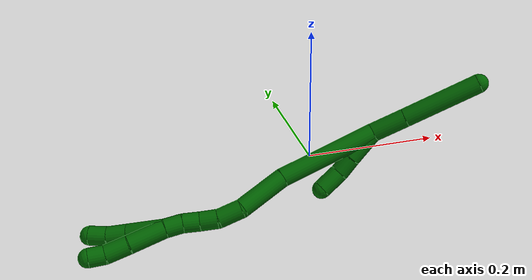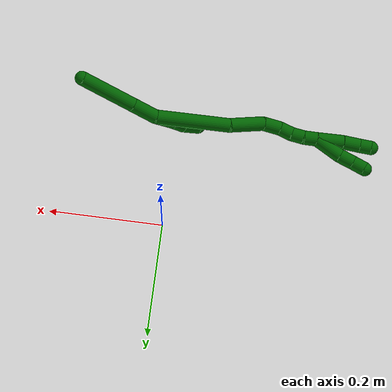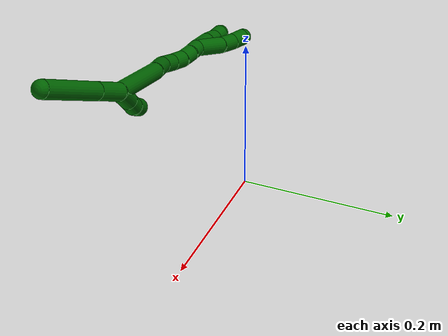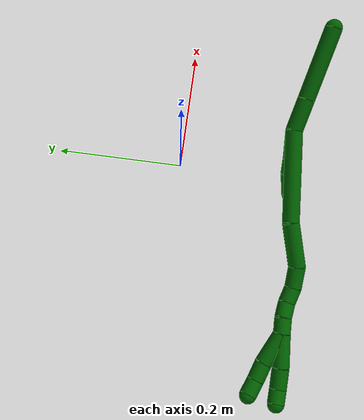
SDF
<sdf version="1.7">
 <world name="default">
  <model name="6">
   <static>0</static>
   <link name="6">
    <collision name="collision-cylinder-e_1_2_8">
     <pose>0.003871 -0.003977 -0.022733 2.96841 0.166192 1.52941</pose>
     <geometry><cylinder><radius>0.0125</radius><length>0.046802</length></cylinder></geometry>
     <surface>
      <friction><ode><mu>1.16</mu><mu2>1.16</mu2><slip1>0</slip1><slip2>0</slip2></ode></friction>
      <contact><ode><kp>1e+06</kp><kd>1</kd><max_vel>0</max_vel><min_depth>0.001</min_depth></ode></contact>
     </surface>
    </collision>
    <visual name="visual-cylinder-e_1_2_8">
     <pose>0.003871 -0.003977 -0.022733 2.96841 0.166192 1.52941</pose>
     <geometry><cylinder><radius>0.0125</radius><length>0.046802</length></cylinder></geometry>
     <material><ambient>0 0.392157 0.003922 1</ambient></material>
    </visual>
    <collision name="collision-cylinder-e_2_8_6">
     <pose>0.016519 -0.016551 -0.095582 2.97169 0.170929 1.57683</pose>
     <geometry><cylinder><radius>0.0125</radius><length>0.103198</length></cylinder></geometry>
     <surface>
      <friction><ode><mu>1.16</mu><mu2>1.16</mu2><slip1>0</slip1><slip2>0</slip2></ode></friction>
      <contact><ode><kp>1e+06</kp><kd>1</kd><max_vel>0</max_vel><min_depth>0.001</min_depth></ode></contact>
     </surface>
    </collision>
    <visual name="visual-cylinder-e_2_8_6">
     <pose>0.016519 -0.016551 -0.095582 2.97169 0.170929 1.57683</pose>
     <geometry><cylinder><radius>0.0125</radius><length>0.103198</length></cylinder></geometry>
     <material><ambient>0 0.392157 0.003922 1</ambient></material>
    </visual>
    <collision name="collision-cylinder-e_1_2_9">
     <pose>-0.009663 -0.003373 0.019045 0.17527 -0.463341 -0.041447</pose>
     <geometry><cylinder><radius>0.0125</radius><length>0.043241</length></cylinder></geometry>
     <surface>
      <friction><ode><mu>1.16</mu><mu2>1.16</mu2><slip1>0</slip1><slip2>0</slip2></ode></friction>
      <contact><ode><kp>1e+06</kp><kd>1</kd><max_vel>0</max_vel><min_depth>0.001</min_depth></ode></contact>
     </surface>
    </collision>
    <visual name="visual-cylinder-e_1_2_9">
     <pose>-0.009663 -0.003373 0.019045 0.17527 -0.463341 -0.041447</pose>
     <geometry><cylinder><radius>0.0125</radius><length>0.043241</length></cylinder></geometry>
     <material><ambient>0 0.392157 0.003922 1</ambient></material>
    </visual>
    <collision name="collision-cylinder-e_2_9_10">
     <pose>-0.025639 -0.008251 0.048767 0.140118 -0.529684 -0.03806</pose>
     <geometry><cylinder><radius>0.0125</radius><length>0.02499</length></cylinder></geometry>
     <surface>
      <friction><ode><mu>1.16</mu><mu2>1.16</mu2><slip1>0</slip1><slip2>0</slip2></ode></friction>
      <contact><ode><kp>1e+06</kp><kd>1</kd><max_vel>0</max_vel><min_depth>0.001</min_depth></ode></contact>
     </surface>
    </collision>
    <visual name="visual-cylinder-e_2_9_10">
     <pose>-0.025639 -0.008251 0.048767 0.140118 -0.529684 -0.03806</pose>
     <geometry><cylinder><radius>0.0125</radius><length>0.02499</length></cylinder></geometry>
     <material><ambient>0 0.392157 0.003922 1</ambient></material>
    </visual>
    <collision name="collision-cylinder-e_3_10_5">
     <pose>-0.035897 -0.013585 0.074347 0.251396 -0.250939 -0.031874</pose>
     <geometry><cylinder><radius>0.0125</radius><length>0.031768</length></cylinder></geometry>
     <surface>
      <friction><ode><mu>1.16</mu><mu2>1.16</mu2><slip1>0</slip1><slip2>0</slip2></ode></friction>
      <contact><ode><kp>1e+06</kp><kd>1</kd><max_vel>0</max_vel><min_depth>0.001</min_depth></ode></contact>
     </surface>
    </collision>
    <visual name="visual-cylinder-e_3_10_5">
     <pose>-0.035897 -0.013585 0.074347 0.251396 -0.250939 -0.031874</pose>
     <geometry><cylinder><radius>0.0125</radius><length>0.031768</length></cylinder></geometry>
     <material><ambient>0 0.392157 0.003922 1</ambient></material>
    </visual>
    <collision name="collision-cylinder-e_1_2_11">
     <pose>0.001405 -0.008735 0.06634 0.130919 0.021 0.001377</pose>
     <geometry><cylinder><radius>0.0125</radius><length>0.133856</length></cylinder></geometry>
     <surface>
      <friction><ode><mu>1.16</mu><mu2>1.16</mu2><slip1>0</slip1><slip2>0</slip2></ode></friction>
      <contact><ode><kp>1e+06</kp><kd>1</kd><max_vel>0</max_vel><min_depth>0.001</min_depth></ode></contact>
     </surface>
    </collision>
    <visual name="visual-cylinder-e_1_2_11">
     <pose>0.001405 -0.008735 0.06634 0.130919 0.021 0.001377</pose>
     <geometry><cylinder><radius>0.0125</radius><length>0.133856</length></cylinder></geometry>
     <material><ambient>0 0.392157 0.003922 1</ambient></material>
    </visual>
    <collision name="collision-cylinder-e_2_11_12">
     <pose>0.000849 -0.027849 0.163719 0.322692 -0.059872 -0.009748</pose>
     <geometry><cylinder><radius>0.0125</radius><length>0.065573</length></cylinder></geometry>
     <surface>
      <friction><ode><mu>1.16</mu><mu2>1.16</mu2><slip1>0</slip1><slip2>0</slip2></ode></friction>
      <contact><ode><kp>1e+06</kp><kd>1</kd><max_vel>0</max_vel><min_depth>0.001</min_depth></ode></contact>
     </surface>
    </collision>
    <visual name="visual-cylinder-e_2_11_12">
     <pose>0.000849 -0.027849 0.163719 0.322692 -0.059872 -0.009748</pose>
     <geometry><cylinder><radius>0.0125</radius><length>0.065573</length></cylinder></geometry>
     <material><ambient>0 0.392157 0.003922 1</ambient></material>
    </visual>
    <collision name="collision-cylinder-e_3_12_13">
     <pose>-0.001649 -0.038031 0.210531 -0.012493 -0.033944 0.000212</pose>
     <geometry><cylinder><radius>0.0125</radius><length>0.031567</length></cylinder></geometry>
     <surface>
      <friction><ode><mu>1.16</mu><mu2>1.16</mu2><slip1>0</slip1><slip2>0</slip2></ode></friction>
      <contact><ode><kp>1e+06</kp><kd>1</kd><max_vel>0</max_vel><min_depth>0.001</min_depth></ode></contact>
     </surface>
    </collision>
    <visual name="visual-cylinder-e_3_12_13">
     <pose>-0.001649 -0.038031 0.210531 -0.012493 -0.033944 0.000212</pose>
     <geometry><cylinder><radius>0.0125</radius><length>0.031567</length></cylinder></geometry>
     <material><ambient>0 0.392157 0.003922 1</ambient></material>
    </visual>
    <collision name="collision-cylinder-e_4_13_14">
     <pose>-0.000779 -0.03483 0.237637 -0.259108 0.119275 -0.015558</pose>
     <geometry><cylinder><radius>0.0125</radius><length>0.023615</length></cylinder></geometry>
     <surface>
      <friction><ode><mu>1.16</mu><mu2>1.16</mu2><slip1>0</slip1><slip2>0</slip2></ode></friction>
      <contact><ode><kp>1e+06</kp><kd>1</kd><max_vel>0</max_vel><min_depth>0.001</min_depth></ode></contact>
     </surface>
    </collision>
    <visual name="visual-cylinder-e_4_13_14">
     <pose>-0.000779 -0.03483 0.237637 -0.259108 0.119275 -0.015558</pose>
     <geometry><cylinder><radius>0.0125</radius><length>0.023615</length></cylinder></geometry>
     <material><ambient>0 0.392157 0.003922 1</ambient></material>
    </visual>
    <collision name="collision-cylinder-e_5_14_15">
     <pose>0.003629 -0.03042 0.259727 -0.129947 0.270056 -0.017678</pose>
     <geometry><cylinder><radius>0.0125</radius><length>0.022514</length></cylinder></geometry>
     <surface>
      <friction><ode><mu>1.16</mu><mu2>1.16</mu2><slip1>0</slip1><slip2>0</slip2></ode></friction>
      <contact><ode><kp>1e+06</kp><kd>1</kd><max_vel>0</max_vel><min_depth>0.001</min_depth></ode></contact>
     </surface>
    </collision>
    <visual name="visual-cylinder-e_5_14_15">
     <pose>0.003629 -0.03042 0.259727 -0.129947 0.270056 -0.017678</pose>
     <geometry><cylinder><radius>0.0125</radius><length>0.022514</length></cylinder></geometry>
     <material><ambient>0 0.392157 0.003922 1</ambient></material>
    </visual>
    <collision name="collision-cylinder-e_6_15_1">
     <pose>0.008761 -0.029625 0.281705 0.054351 0.187195 0.005103</pose>
     <geometry><cylinder><radius>0.0125</radius><length>0.022875</length></cylinder></geometry>
     <surface>
      <friction><ode><mu>1.16</mu><mu2>1.16</mu2><slip1>0</slip1><slip2>0</slip2></ode></friction>
      <contact><ode><kp>1e+06</kp><kd>1</kd><max_vel>0</max_vel><min_depth>0.001</min_depth></ode></contact>
     </surface>
    </collision>
    <visual name="visual-cylinder-e_6_15_1">
     <pose>0.008761 -0.029625 0.281705 0.054351 0.187195 0.005103</pose>
     <geometry><cylinder><radius>0.0125</radius><length>0.022875</length></cylinder></geometry>
     <material><ambient>0 0.392157 0.003922 1</ambient></material>
    </visual>
    <collision name="collision-cylinder-e_1_1_16">
     <pose>0.01108 -0.020557 0.315693 -0.401949 0.00769 -0.001567</pose>
     <geometry><cylinder><radius>0.0125</radius><length>0.049477</length></cylinder></geometry>
     <surface>
      <friction><ode><mu>1.16</mu><mu2>1.16</mu2><slip1>0</slip1><slip2>0</slip2></ode></friction>
      <contact><ode><kp>1e+06</kp><kd>1</kd><max_vel>0</max_vel><min_depth>0.001</min_depth></ode></contact>
     </surface>
    </collision>
    <visual name="visual-cylinder-e_1_1_16">
     <pose>0.01108 -0.020557 0.315693 -0.401949 0.00769 -0.001567</pose>
     <geometry><cylinder><radius>0.0125</radius><length>0.049477</length></cylinder></geometry>
     <material><ambient>0 0.392157 0.003922 1</ambient></material>
    </visual>
    <collision name="collision-cylinder-e_2_16_17">
     <pose>0.012714 -0.007054 0.351363 -0.288189 0.106873 -0.015522</pose>
     <geometry><cylinder><radius>0.0125</radius><length>0.027072</length></cylinder></geometry>
     <surface>
      <friction><ode><mu>1.16</mu><mu2>1.16</mu2><slip1>0</slip1><slip2>0</slip2></ode></friction>
      <contact><ode><kp>1e+06</kp><kd>1</kd><max_vel>0</max_vel><min_depth>0.001</min_depth></ode></contact>
     </surface>
    </collision>
    <visual name="visual-cylinder-e_2_16_17">
     <pose>0.012714 -0.007054 0.351363 -0.288189 0.106873 -0.015522</pose>
     <geometry><cylinder><radius>0.0125</radius><length>0.027072</length></cylinder></geometry>
     <material><ambient>0 0.392157 0.003922 1</ambient></material>
    </visual>
    <collision name="collision-cylinder-e_3_17_4">
     <pose>0.017059 0.000962 0.374826 -0.377828 0.250004 -0.048041</pose>
     <geometry><cylinder><radius>0.0125</radius><length>0.023451</length></cylinder></geometry>
     <surface>
      <friction><ode><mu>1.16</mu><mu2>1.16</mu2><slip1>0</slip1><slip2>0</slip2></ode></friction>
      <contact><ode><kp>1e+06</kp><kd>1</kd><max_vel>0</max_vel><min_depth>0.001</min_depth></ode></contact>
     </surface>
    </collision>
    <visual name="visual-cylinder-e_3_17_4">
     <pose>0.017059 0.000962 0.374826 -0.377828 0.250004 -0.048041</pose>
     <geometry><cylinder><radius>0.0125</radius><length>0.023451</length></cylinder></geometry>
     <material><ambient>0 0.392157 0.003922 1</ambient></material>
    </visual>
    <collision name="collision-cylinder-e_1_1_18">
     <pose>0.012454 -0.033134 0.31651 0.122309 0.065743 0.004027</pose>
     <geometry><cylinder><radius>0.0125</radius><length>0.047625</length></cylinder></geometry>
     <surface>
      <friction><ode><mu>1.16</mu><mu2>1.16</mu2><slip1>0</slip1><slip2>0</slip2></ode></friction>
      <contact><ode><kp>1e+06</kp><kd>1</kd><max_vel>0</max_vel><min_depth>0.001</min_depth></ode></contact>
     </surface>
    </collision>
    <visual name="visual-cylinder-e_1_1_18">
     <pose>0.012454 -0.033134 0.31651 0.122309 0.065743 0.004027</pose>
     <geometry><cylinder><radius>0.0125</radius><length>0.047625</length></cylinder></geometry>
     <material><ambient>0 0.392157 0.003922 1</ambient></material>
    </visual>
    <collision name="collision-cylinder-e_2_18_19">
     <pose>0.014377 -0.036621 0.355595 0.037931 0.023118 0.000439</pose>
     <geometry><cylinder><radius>0.0125</radius><length>0.031033</length></cylinder></geometry>
     <surface>
      <friction><ode><mu>1.16</mu><mu2>1.16</mu2><slip1>0</slip1><slip2>0</slip2></ode></friction>
      <contact><ode><kp>1e+06</kp><kd>1</kd><max_vel>0</max_vel><min_depth>0.001</min_depth></ode></contact>
     </surface>
    </collision>
    <visual name="visual-cylinder-e_2_18_19">
     <pose>0.014377 -0.036621 0.355595 0.037931 0.023118 0.000439</pose>
     <geometry><cylinder><radius>0.0125</radius><length>0.031033</length></cylinder></geometry>
     <material><ambient>0 0.392157 0.003922 1</ambient></material>
    </visual>
    <collision name="collision-cylinder-e_3_19_3">
     <pose>0.017337 -0.036894 0.38144 -0.030463 0.246316 -0.003771</pose>
     <geometry><cylinder><radius>0.0125</radius><length>0.021341</length></cylinder></geometry>
     <surface>
      <friction><ode><mu>1.16</mu><mu2>1.16</mu2><slip1>0</slip1><slip2>0</slip2></ode></friction>
      <contact><ode><kp>1e+06</kp><kd>1</kd><max_vel>0</max_vel><min_depth>0.001</min_depth></ode></contact>
     </surface>
    </collision>
    <visual name="visual-cylinder-e_3_19_3">
     <pose>0.017337 -0.036894 0.38144 -0.030463 0.246316 -0.003771</pose>
     <geometry><cylinder><radius>0.0125</radius><length>0.021341</length></cylinder></geometry>
     <material><ambient>0 0.392157 0.003922 1</ambient></material>
    </visual>
    <collision name="collision-sphere-3">
     <pose>0.019939 -0.036579 0.391784 0 -0 0</pose>
     <geometry><sphere><radius>0.0125</radius></sphere></geometry>
     <surface>
      <friction><ode><mu>1.16</mu><mu2>1.16</mu2><slip1>0</slip1><slip2>0</slip2></ode></friction>
      <contact><ode><kp>1e+06</kp><kd>1</kd><max_vel>0</max_vel><min_depth>0.001</min_depth></ode></contact>
     </surface>
    </collision>
    <visual name="visual-sphere-3">
     <pose>0.019939 -0.036579 0.391784 0 -0 0</pose>
     <geometry><sphere><radius>0.0125</radius></sphere></geometry>
     <material><ambient>0 0.392157 0.003922 1</ambient></material>
    </visual>
    <collision name="collision-sphere-19">
     <pose>0.014735 -0.03721 0.371096 0 -0 0</pose>
     <geometry><sphere><radius>0.0125</radius></sphere></geometry>
     <surface>
      <friction><ode><mu>1.16</mu><mu2>1.16</mu2><slip1>0</slip1><slip2>0</slip2></ode></friction>
      <contact><ode><kp>1e+06</kp><kd>1</kd><max_vel>0</max_vel><min_depth>0.001</min_depth></ode></contact>
     </surface>
    </collision>
    <visual name="visual-sphere-19">
     <pose>0.014735 -0.03721 0.371096 0 -0 0</pose>
     <geometry><sphere><radius>0.0125</radius></sphere></geometry>
     <material><ambient>0 0.392157 0.003922 1</ambient></material>
    </visual>
    <collision name="collision-sphere-5">
     <pose>-0.039841 -0.017412 0.08925 0 -0 0</pose>
     <geometry><sphere><radius>0.0125</radius></sphere></geometry>
     <surface>
      <friction><ode><mu>1.16</mu><mu2>1.16</mu2><slip1>0</slip1><slip2>0</slip2></ode></friction>
      <contact><ode><kp>1e+06</kp><kd>1</kd><max_vel>0</max_vel><min_depth>0.001</min_depth></ode></contact>
     </surface>
    </collision>
    <visual name="visual-sphere-5">
     <pose>-0.039841 -0.017412 0.08925 0 -0 0</pose>
     <geometry><sphere><radius>0.0125</radius></sphere></geometry>
     <material><ambient>0 0.392157 0.003922 1</ambient></material>
    </visual>
    <collision name="collision-sphere-10">
     <pose>-0.031953 -0.009757 0.059444 0 -0 0</pose>
     <geometry><sphere><radius>0.0125</radius></sphere></geometry>
     <surface>
      <friction><ode><mu>1.16</mu><mu2>1.16</mu2><slip1>0</slip1><slip2>0</slip2></ode></friction>
      <contact><ode><kp>1e+06</kp><kd>1</kd><max_vel>0</max_vel><min_depth>0.001</min_depth></ode></contact>
     </surface>
    </collision>
    <visual name="visual-sphere-10">
     <pose>-0.031953 -0.009757 0.059444 0 -0 0</pose>
     <geometry><sphere><radius>0.0125</radius></sphere></geometry>
     <material><ambient>0 0.392157 0.003922 1</ambient></material>
    </visual>
    <collision name="collision-sphere-6">
     <pose>0.025296 -0.025149 -0.145697 0 -0 0</pose>
     <geometry><sphere><radius>0.0125</radius></sphere></geometry>
     <surface>
      <friction><ode><mu>1.16</mu><mu2>1.16</mu2><slip1>0</slip1><slip2>0</slip2></ode></friction>
      <contact><ode><kp>1e+06</kp><kd>1</kd><max_vel>0</max_vel><min_depth>0.001</min_depth></ode></contact>
     </surface>
    </collision>
    <visual name="visual-sphere-6">
     <pose>0.025296 -0.025149 -0.145697 0 -0 0</pose>
     <geometry><sphere><radius>0.0125</radius></sphere></geometry>
     <material><ambient>0 0.392157 0.003922 1</ambient></material>
    </visual>
    <collision name="collision-sphere-9">
     <pose>-0.019326 -0.006745 0.038089 0 -0 0</pose>
     <geometry><sphere><radius>0.0125</radius></sphere></geometry>
     <surface>
      <friction><ode><mu>1.16</mu><mu2>1.16</mu2><slip1>0</slip1><slip2>0</slip2></ode></friction>
      <contact><ode><kp>1e+06</kp><kd>1</kd><max_vel>0</max_vel><min_depth>0.001</min_depth></ode></contact>
     </surface>
    </collision>
    <visual name="visual-sphere-9">
     <pose>-0.019326 -0.006745 0.038089 0 -0 0</pose>
     <geometry><sphere><radius>0.0125</radius></sphere></geometry>
     <material><ambient>0 0.392157 0.003922 1</ambient></material>
    </visual>
    <collision name="collision-sphere-2">
     <geometry><sphere><radius>0.0125</radius></sphere></geometry>
     <surface>
      <friction><ode><mu>1.16</mu><mu2>1.16</mu2><slip1>0</slip1><slip2>0</slip2></ode></friction>
      <contact><ode><kp>1e+06</kp><kd>1</kd><max_vel>0</max_vel><min_depth>0.001</min_depth></ode></contact>
     </surface>
    </collision>
    <visual name="visual-sphere-2">
     <geometry><sphere><radius>0.0125</radius></sphere></geometry>
     <material><ambient>0 0.392157 0.003922 1</ambient></material>
    </visual>
    <collision name="collision-sphere-8">
     <pose>0.007742 -0.007954 -0.045467 0 -0 0</pose>
     <geometry><sphere><radius>0.0125</radius></sphere></geometry>
     <surface>
      <friction><ode><mu>1.16</mu><mu2>1.16</mu2><slip1>0</slip1><slip2>0</slip2></ode></friction>
      <contact><ode><kp>1e+06</kp><kd>1</kd><max_vel>0</max_vel><min_depth>0.001</min_depth></ode></contact>
     </surface>
    </collision>
    <visual name="visual-sphere-8">
     <pose>0.007742 -0.007954 -0.045467 0 -0 0</pose>
     <geometry><sphere><radius>0.0125</radius></sphere></geometry>
     <material><ambient>0 0.392157 0.003922 1</ambient></material>
    </visual>
    <collision name="collision-sphere-11">
     <pose>0.002811 -0.01747 0.132681 0 -0 0</pose>
     <geometry><sphere><radius>0.0125</radius></sphere></geometry>
     <surface>
      <friction><ode><mu>1.16</mu><mu2>1.16</mu2><slip1>0</slip1><slip2>0</slip2></ode></friction>
      <contact><ode><kp>1e+06</kp><kd>1</kd><max_vel>0</max_vel><min_depth>0.001</min_depth></ode></contact>
     </surface>
    </collision>
    <visual name="visual-sphere-11">
     <pose>0.002811 -0.01747 0.132681 0 -0 0</pose>
     <geometry><sphere><radius>0.0125</radius></sphere></geometry>
     <material><ambient>0 0.392157 0.003922 1</ambient></material>
    </visual>
    <collision name="collision-sphere-12">
     <pose>-0.001113 -0.038228 0.194758 0 -0 0</pose>
     <geometry><sphere><radius>0.0125</radius></sphere></geometry>
     <surface>
      <friction><ode><mu>1.16</mu><mu2>1.16</mu2><slip1>0</slip1><slip2>0</slip2></ode></friction>
      <contact><ode><kp>1e+06</kp><kd>1</kd><max_vel>0</max_vel><min_depth>0.001</min_depth></ode></contact>
     </surface>
    </collision>
    <visual name="visual-sphere-12">
     <pose>-0.001113 -0.038228 0.194758 0 -0 0</pose>
     <geometry><sphere><radius>0.0125</radius></sphere></geometry>
     <material><ambient>0 0.392157 0.003922 1</ambient></material>
    </visual>
    <collision name="collision-sphere-13">
     <pose>-0.002184 -0.037834 0.226305 0 -0 0</pose>
     <geometry><sphere><radius>0.0125</radius></sphere></geometry>
     <surface>
      <friction><ode><mu>1.16</mu><mu2>1.16</mu2><slip1>0</slip1><slip2>0</slip2></ode></friction>
      <contact><ode><kp>1e+06</kp><kd>1</kd><max_vel>0</max_vel><min_depth>0.001</min_depth></ode></contact>
     </surface>
    </collision>
    <visual name="visual-sphere-13">
     <pose>-0.002184 -0.037834 0.226305 0 -0 0</pose>
     <geometry><sphere><radius>0.0125</radius></sphere></geometry>
     <material><ambient>0 0.392157 0.003922 1</ambient></material>
    </visual>
    <collision name="collision-sphere-14">
     <pose>0.000626 -0.031826 0.24897 0 -0 0</pose>
     <geometry><sphere><radius>0.0125</radius></sphere></geometry>
     <surface>
      <friction><ode><mu>1.16</mu><mu2>1.16</mu2><slip1>0</slip1><slip2>0</slip2></ode></friction>
      <contact><ode><kp>1e+06</kp><kd>1</kd><max_vel>0</max_vel><min_depth>0.001</min_depth></ode></contact>
     </surface>
    </collision>
    <visual name="visual-sphere-14">
     <pose>0.000626 -0.031826 0.24897 0 -0 0</pose>
     <geometry><sphere><radius>0.0125</radius></sphere></geometry>
     <material><ambient>0 0.392157 0.003922 1</ambient></material>
    </visual>
    <collision name="collision-sphere-15">
     <pose>0.006632 -0.029014 0.270485 0 -0 0</pose>
     <geometry><sphere><radius>0.0125</radius></sphere></geometry>
     <surface>
      <friction><ode><mu>1.16</mu><mu2>1.16</mu2><slip1>0</slip1><slip2>0</slip2></ode></friction>
      <contact><ode><kp>1e+06</kp><kd>1</kd><max_vel>0</max_vel><min_depth>0.001</min_depth></ode></contact>
     </surface>
    </collision>
    <visual name="visual-sphere-15">
     <pose>0.006632 -0.029014 0.270485 0 -0 0</pose>
     <geometry><sphere><radius>0.0125</radius></sphere></geometry>
     <material><ambient>0 0.392157 0.003922 1</ambient></material>
    </visual>
    <collision name="collision-sphere-1">
     <pose>0.010889 -0.030235 0.292926 0 -0 0</pose>
     <geometry><sphere><radius>0.0125</radius></sphere></geometry>
     <surface>
      <friction><ode><mu>1.16</mu><mu2>1.16</mu2><slip1>0</slip1><slip2>0</slip2></ode></friction>
      <contact><ode><kp>1e+06</kp><kd>1</kd><max_vel>0</max_vel><min_depth>0.001</min_depth></ode></contact>
     </surface>
    </collision>
    <visual name="visual-sphere-1">
     <pose>0.010889 -0.030235 0.292926 0 -0 0</pose>
     <geometry><sphere><radius>0.0125</radius></sphere></geometry>
     <material><ambient>0 0.392157 0.003922 1</ambient></material>
    </visual>
    <collision name="collision-sphere-18">
     <pose>0.014018 -0.036033 0.340094 0 -0 0</pose>
     <geometry><sphere><radius>0.0125</radius></sphere></geometry>
     <surface>
      <friction><ode><mu>1.16</mu><mu2>1.16</mu2><slip1>0</slip1><slip2>0</slip2></ode></friction>
      <contact><ode><kp>1e+06</kp><kd>1</kd><max_vel>0</max_vel><min_depth>0.001</min_depth></ode></contact>
     </surface>
    </collision>
    <visual name="visual-sphere-18">
     <pose>0.014018 -0.036033 0.340094 0 -0 0</pose>
     <geometry><sphere><radius>0.0125</radius></sphere></geometry>
     <material><ambient>0 0.392157 0.003922 1</ambient></material>
    </visual>
    <collision name="collision-sphere-16">
     <pose>0.01127 -0.01088 0.338459 0 -0 0</pose>
     <geometry><sphere><radius>0.0125</radius></sphere></geometry>
     <surface>
      <friction><ode><mu>1.16</mu><mu2>1.16</mu2><slip1>0</slip1><slip2>0</slip2></ode></friction>
      <contact><ode><kp>1e+06</kp><kd>1</kd><max_vel>0</max_vel><min_depth>0.001</min_depth></ode></contact>
     </surface>
    </collision>
    <visual name="visual-sphere-16">
     <pose>0.01127 -0.01088 0.338459 0 -0 0</pose>
     <geometry><sphere><radius>0.0125</radius></sphere></geometry>
     <material><ambient>0 0.392157 0.003922 1</ambient></material>
    </visual>
    <collision name="collision-sphere-17">
     <pose>0.014158 -0.003229 0.364266 0 -0 0</pose>
     <geometry><sphere><radius>0.0125</radius></sphere></geometry>
     <surface>
      <friction><ode><mu>1.16</mu><mu2>1.16</mu2><slip1>0</slip1><slip2>0</slip2></ode></friction>
      <contact><ode><kp>1e+06</kp><kd>1</kd><max_vel>0</max_vel><min_depth>0.001</min_depth></ode></contact>
     </surface>
    </collision>
    <visual name="visual-sphere-17">
     <pose>0.014158 -0.003229 0.364266 0 -0 0</pose>
     <geometry><sphere><radius>0.0125</radius></sphere></geometry>
     <material><ambient>0 0.392157 0.003922 1</ambient></material>
    </visual>
    <collision name="collision-sphere-4">
     <pose>0.01996 0.005153 0.385386 0 -0 0</pose>
     <geometry><sphere><radius>0.0125</radius></sphere></geometry>
     <surface>
      <friction><ode><mu>1.16</mu><mu2>1.16</mu2><slip1>0</slip1><slip2>0</slip2></ode></friction>
      <contact><ode><kp>1e+06</kp><kd>1</kd><max_vel>0</max_vel><min_depth>0.001</min_depth></ode></contact>
     </surface>
    </collision>
    <visual name="visual-sphere-4">
     <pose>0.01996 0.005153 0.385386 0 -0 0</pose>
     <geometry><sphere><radius>0.0125</radius></sphere></geometry>
     <material><ambient>0 0.392157 0.003922 1</ambient></material>
    </visual>
    <inertial>
     <pose>0.003792 -0.018328 0.141083 0 -0 0</pose>
     <mass>0.75</mass>
     <inertia>
      <ixx>0.000391</ixx>
      <ixy>0</ixy>
      <ixz>0</ixz>
      <iyy>0.000387</iyy>
      <iyz>0</iyz>
      <izz>6.5e-05</izz>
     </inertia>
    </inertial>
   </link>
   <pose>0.03131 -0.161292 0.116069 2.92841 -1.24917 -2.95853</pose>
  </model>
 </world>
</sdf>
